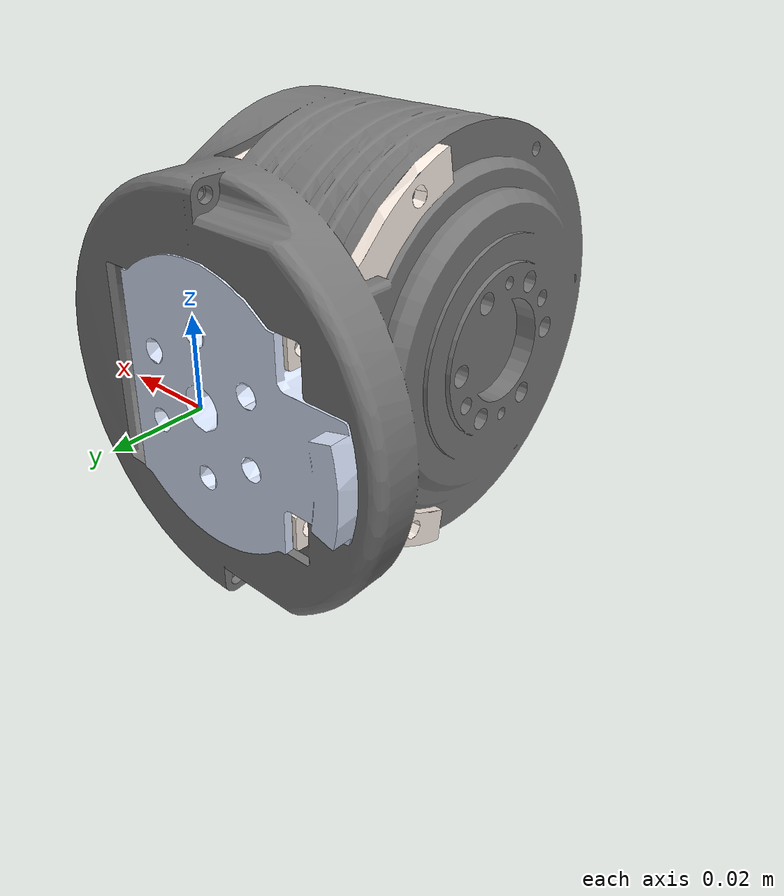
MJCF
<mujoco model="link1_obj">
  <asset>
    <mesh name="link1_00" file="link1_00.obj"/>
    <mesh name="link1_01" file="link1_01.obj"/>
    <mesh name="link1_02" file="link1_02.obj"/>
    <mesh name="link1_03" file="link1_03.obj"/>
    <material name="link1_00_mat" rgba="0.627451 0.627451 0.627451 1.000000"/>
    <material name="link1_01_mat" rgba="0.470588 0.470588 0.470588 1.000000"/>
    <material name="link1_02_mat" rgba="0.866667 0.909804 1.000000 1.000000"/>
    <material name="link1_03_mat" rgba="1.000000 0.949020 0.909804 1.000000"/>
  </asset>
  <worldbody>
    <body name="link1_obj">
      <geom type="mesh" mesh="link1_00" material="link1_00_mat" contype="0" conaffinity="0" group="1"/>
      <geom type="mesh" mesh="link1_01" material="link1_01_mat" contype="0" conaffinity="0" group="1"/>
      <geom type="mesh" mesh="link1_02" material="link1_02_mat" contype="0" conaffinity="0" group="1"/>
      <geom type="mesh" mesh="link1_03" material="link1_03_mat" contype="0" conaffinity="0" group="1"/>
    </body>
  </worldbody>
</mujoco>
